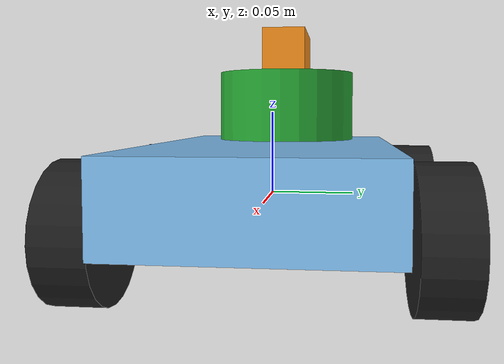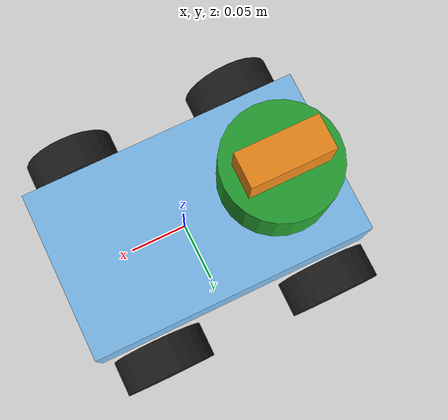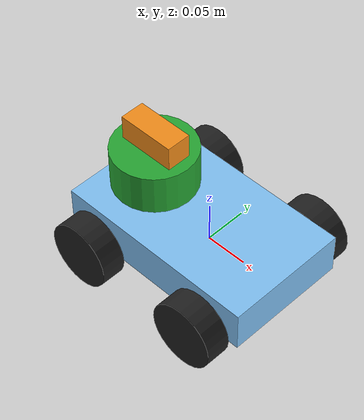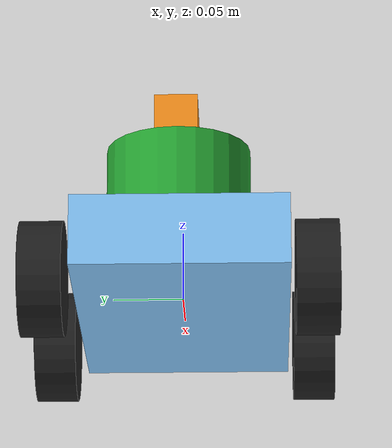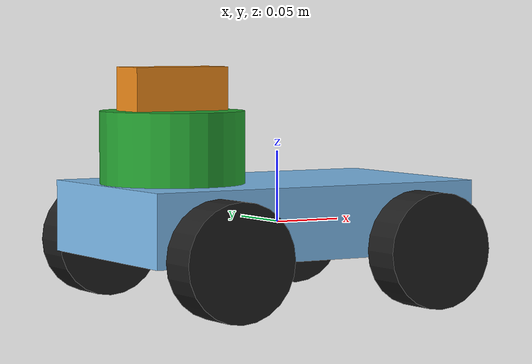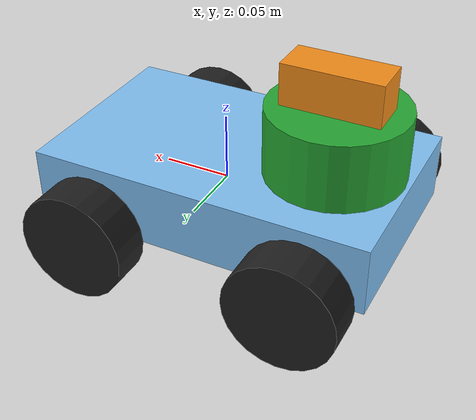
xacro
<?xml version="1.0" ?>
<robot name="bfl_9" xmlns:xacro="http://ros.org/wiki/xacro">
  <xacro:include filename="$(find dharmendra_model)/gazebo/bfl_9/bfl_9.gazebo"/>

  <joint name="camera_joint" type="fixed">
    <parent link="chassy_link"/>
    <child link="camera_link"/>
    <origin xyz="-0.08272  0.00202  0.09503" rpy="0.0 0.0    0.0"/>
    <axis xyz="0 0 0"/>
    <limit lower="0" upper="0" effort="0" velocity="0"/>
  </joint>

  <link name="camera_link">
    <inertial>
      <mass value="1"/>
      <origin xyz="0 0 0" rpy="0 0 0"/>
      <inertia ixx="0.166667" ixy="0" ixz="0" iyy="0.166667" iyz="0" izz="0.166667"/>
    </inertial>
    <collision>
      <origin xyz="0 0 0" rpy="0 0 0"/>
      <geometry>
        <box size="0.07071 0.03 0.03"/>
      </geometry>
    </collision>
    <visual>
      <origin xyz="0 0 0" rpy="0 0 0"/>
      <geometry>
        <box size="0.07071 0.03 0.03"/>
      </geometry>
    </visual>
  </link>

  <joint name="back_left_joint" type="revolute">
    <parent link="chassy_link"/>
    <child link="back_left_link"/>
    <origin xyz="0.06435 -0.09418 -0.015" rpy="1.5708 0     0"/>
    <axis xyz="0 0 1"/>
    <limit lower="-1.79769e+308" upper="1.79769e+308" effort="-1.0" velocity="-1.0"/>
  </joint>

  <link name="back_left_link">
    <inertial>
      <mass value="1"/>
      <origin xyz="0 0 0" rpy="0 0 0"/>
      <inertia ixx="0.145833" ixy="0" ixz="0" iyy="0.145833" iyz="0" izz="0.125"/>
    </inertial>
    <collision>
      <origin xyz="0 0 0" rpy="0 0 0"/>
      <geometry>
        <cylinder radius="0.04" length="0.03"/>
      </geometry>
    </collision>
    <visual>
      <origin xyz="0 0 0" rpy="0 0 0"/>
      <geometry>
        <cylinder radius="0.04" length="0.03"/>
      </geometry>
    </visual>
  </link>

  <joint name="back_right_joint" type="revolute">
    <parent link="chassy_link"/>
    <child link="back_right_link"/>
    <origin xyz="0.06435  0.09414 -0.015" rpy="1.5708 0     0"/>
    <axis xyz="0 0 1"/>
    <limit lower="-1.79769e+308" upper="1.79769e+308" effort="-1.0" velocity="-1.0"/>
  </joint>

  <link name="back_right_link">
    <inertial>
      <mass value="1"/>
      <origin xyz="0 0 0" rpy="0 0 0"/>
      <inertia ixx="0.145833" ixy="0" ixz="0" iyy="0.145833" iyz="0" izz="0.125"/>
    </inertial>
    <collision>
      <origin xyz="0 0 0" rpy="0 0 0"/>
      <geometry>
        <cylinder radius="0.04" length="0.03"/>
      </geometry>
    </collision>
    <visual>
      <origin xyz="0 0 0" rpy="0 0 0"/>
      <geometry>
        <cylinder radius="0.04" length="0.03"/>
      </geometry>
    </visual>
  </link>

  <joint name="front_right_joint" type="revolute">
    <parent link="chassy_link"/>
    <child link="front_right_link"/>
    <origin xyz="-0.09187  0.09414 -0.015" rpy="1.5708 0     0"/>
    <axis xyz="0 0 1"/>
    <limit lower="-1.79769e+308" upper="1.79769e+308" effort="-1.0" velocity="-1.0"/>
  </joint>

   <link name="front_right_link">
    <inertial>
      <mass value="1"/>
      <origin xyz="0 0 0" rpy="0 0 0"/>
      <inertia ixx="0.145833" ixy="0" ixz="0" iyy="0.145833" iyz="0" izz="0.125"/>
    </inertial>
    <collision>
      <origin xyz="0 0 0" rpy="0 0 0"/>
      <geometry>
        <cylinder radius="0.04" length="0.03"/>
      </geometry>
    </collision>
    <visual>
      <origin xyz="0 0 0" rpy="0 0 0"/>
      <geometry>
        <cylinder radius="0.04" length="0.03"/>
      </geometry>
    </visual>
  </link>

  <joint name="front_left_joint" type="revolute">
    <parent link="chassy_link"/>
    <child link="front_left_link"/>
    <origin xyz="-0.09187 -0.09418 -0.015" rpy="1.5708 0     0"/>
    <axis xyz="0 0 1"/>
    <limit lower="-1.79769e+308" upper="1.79769e+308" effort="-1.0" velocity="-1.0"/>
  </joint>

  <link name="front_left_link">
    <inertial>
      <mass value="1"/>
      <origin xyz="0 0 0" rpy="0 0 0"/>
      <inertia ixx="0.145833" ixy="0" ixz="0" iyy="0.145833" iyz="0" izz="0.125"/>
    </inertial>
    <collision>
      <origin xyz="0 0 0" rpy="0 0 0"/>
      <geometry>
        <cylinder radius="0.04" length="0.03"/>
      </geometry>
    </collision>
    <visual>
      <origin xyz="0 0 0" rpy="0 0 0"/>
      <geometry>
        <cylinder radius="0.04" length="0.03"/>
      </geometry>
    </visual>
  </link>

  <joint name="lidar_joint" type="fixed">
    <parent link="chassy_link"/>
    <child link="lidar_link"/>
    <origin xyz="-0.08374  0.00097  0.055" rpy="0 0 0"/>
    <axis xyz="0 0 0"/>
    <limit lower="0" upper="0" effort="0" velocity="0"/>
  </joint>

  <link name="lidar_link">
    <inertial>
      <mass value="1"/>
      <origin xyz="0 0 0" rpy="0 0 0"/>
      <inertia ixx="0.145833" ixy="0" ixz="0" iyy="0.145833" iyz="0" izz="0.125"/>
    </inertial>
    <collision>
      <origin xyz="0 0 0" rpy="0 0 0"/>
      <geometry>
        <cylinder radius="0.05" length="0.05"/>
      </geometry>
    </collision>
    <visual>
      <origin xyz="0 0 0" rpy="0 0 0"/>
      <geometry>
        <cylinder radius="0.05" length="0.05"/>
      </geometry>
    </visual>
  </link>

  <link name="chassy_link">
    <inertial>
      <mass value="1"/>
      <origin xyz="0 0 0" rpy="0 0 0"/>
      <inertia ixx="0.166667" ixy="0" ixz="0" iyy="0.166667" iyz="0" izz="0.166667"/>
    </inertial>
    <collision>
      <origin xyz="-0.01153 -0.0009   0.005" rpy="1.5708 0     1.5708"/>
      <geometry>
        <box size="0.15 0.05 0.25"/>
      </geometry>
    </collision>
    <visual>
      <origin xyz="-0.01153 -0.0009   0.005" rpy="1.5708 0     1.5708"/>
      <geometry>
        <box size="0.15 0.05 0.25"/>
      </geometry>
    </visual>
  </link>

</robot>
